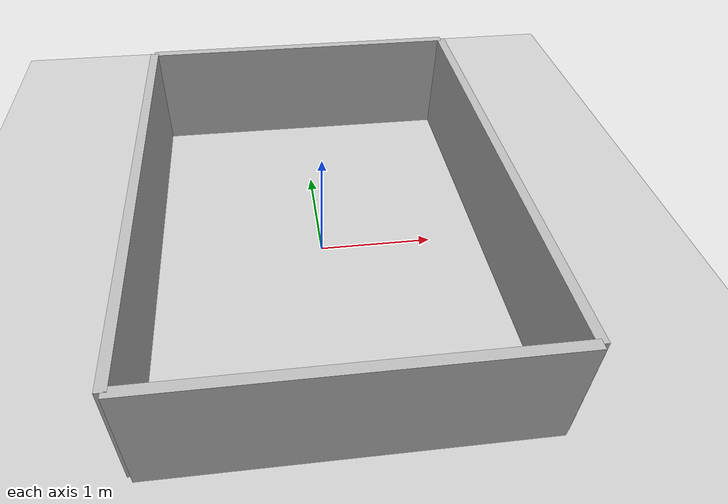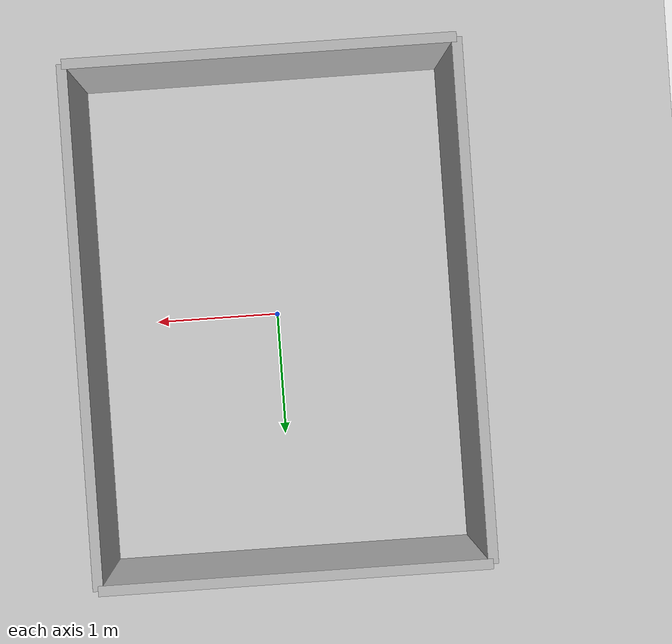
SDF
<?xml version="1.0"?>
<sdf version="1.6">
  <world name="default">
    <include><uri>model://sun</uri></include>
    <include><uri>model://ground_plane</uri></include>

    <physics type="ode">
      <real_time_update_rate>1000</real_time_update_rate>
      <max_step_size>0.001</max_step_size>
    </physics>

    <model name="north_wall">
      <static>true</static><pose>0 2 0.5 0 0 0</pose>
      <link name="link">
        <collision name="collision"><geometry><box><size>3 0.08 1</size></box></geometry></collision>
        <visual name="visual"><geometry><box><size>3 0.08 1</size></box></geometry></visual>
      </link>
    </model>
    <model name="south_wall">
      <static>true</static><pose>0 -2 0.5 0 0 0</pose>
      <link name="link">
        <collision name="collision"><geometry><box><size>3 0.08 1</size></box></geometry></collision>
        <visual name="visual"><geometry><box><size>3 0.08 1</size></box></geometry></visual>
      </link>
    </model>
    <model name="east_wall">
      <static>true</static><pose>1.5 0 0.5 0 0 0</pose>
      <link name="link">
        <collision name="collision"><geometry><box><size>0.08 4 1</size></box></geometry></collision>
        <visual name="visual"><geometry><box><size>0.08 4 1</size></box></geometry></visual>
      </link>
    </model>
    <model name="west_wall">
      <static>true</static><pose>-1.5 0 0.5 0 0 0</pose>
      <link name="link">
        <collision name="collision"><geometry><box><size>0.08 4 1</size></box></geometry></collision>
        <visual name="visual"><geometry><box><size>0.08 4 1</size></box></geometry></visual>
      </link>
    </model>
  </world>
</sdf>
